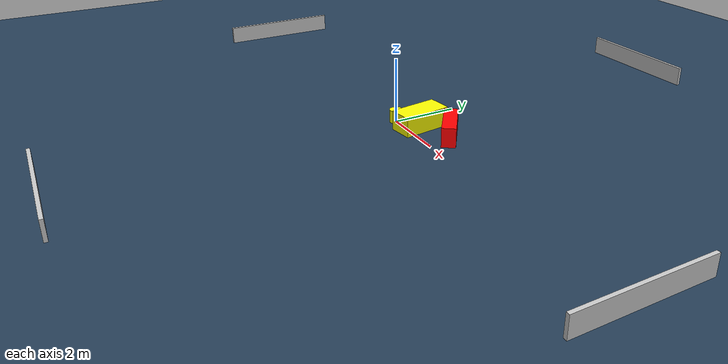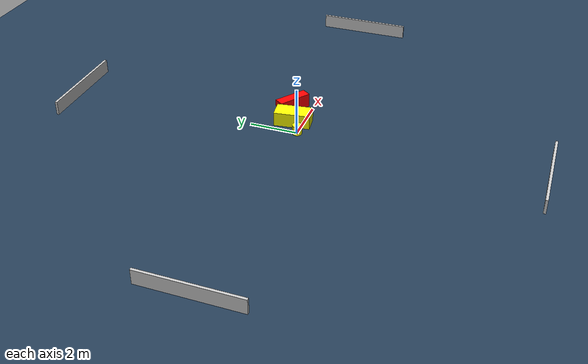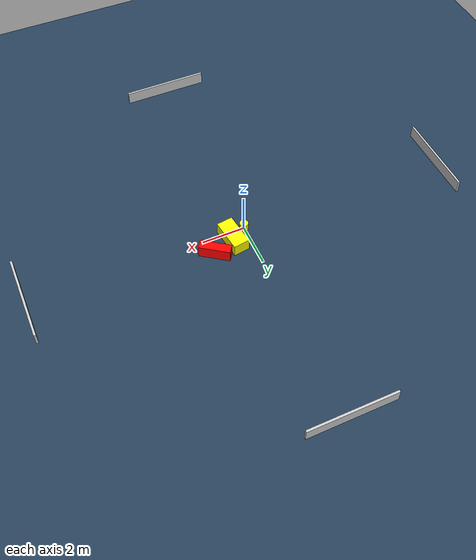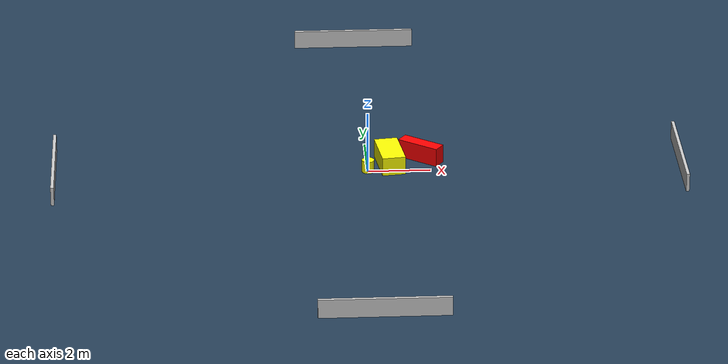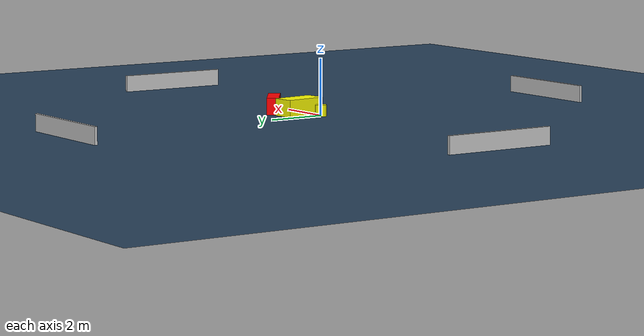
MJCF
<?xml version="1.0" ?>
<mujoco model="generated_environment">
  <option timestep="0.01" integrator="RK4" cone="elliptic"/>
  <default>
    <geom density="1"/>
  </default>
  <asset>
    <texture builtin="gradient" height="3072" name="skybox" rgb1="0.3 0.5 0.7" rgb2="0 0 0" type="skybox" width="512"/>
    <texture builtin="checker" height="300" name="groundplane" rgb1="0.2 0.3 0.4" rgb2="0.1 0.2 0.3" type="2d" width="300"/>
    <material name="groundplane" reflectance="0.2" texrepeat="5 5" texture="groundplane"/>
  </asset>
  <worldbody>
    <light dir="0 0 -1" directional="true" pos="0 0 1.5"/>
    <geom condim="3" friction="0.5 0.005 0.001" material="groundplane" name="floor" pos="0 0 0" size="0 0 0.05" type="plane"/>
    <body name="walls">
      <geom name="wall_1" condim="4" pos="-10.0 0.0 0.3" rgba="0.800000011920929 0.800000011920929 0.800000011920929 1.0" size="0.05 2.0 0.3" type="box"/>
      <geom name="wall_2" condim="4" pos="10.0 0.0 0.3" rgba="0.800000011920929 0.800000011920929 0.800000011920929 1.0" size="0.05 2.0 0.3" type="box"/>
      <geom name="wall_3" condim="4" pos="0.0 -10.0 0.3" rgba="0.800000011920929 0.800000011920929 0.800000011920929 1.0" size="2.0 0.05 0.3" type="box"/>
      <geom name="wall_4" condim="4" pos="0.0 10.0 0.3" rgba="0.800000011920929 0.800000011920929 0.800000011920929 1.0" size="2.0 0.05 0.3" type="box"/>
    </body>
    <body name="robot">
      <joint name="joint_x" type="slide" pos="0 0 0" axis="1 0 0"/>
      <joint name="joint_y" type="slide" pos="0 0 0" axis="0 1 0"/>
      <geom name="robot" type="cylinder" pos="0.0 0.0 0.2" size="0.2 0.2 0.0" mass="5.0" friction="1.0 0.005 0.0001" condim="4" rgba="1.0 1.0 0.0 1.0"/>
    </body>
    <body name="obstacle_1_movable">
      <geom name="obstacle_1_movable" condim="4" pos="0.716255064109907 0.4201458037982431 0.3" euler="0 0 7.414997844293922" friction="0.0 0.005 0.001" rgba="1.0 1.0 0.0 1.0" size="0.3760900232296676 0.750328170049902 0.3" type="box" mass="0.1"/>
      <joint type="free"/>
    </body>
    <body name="obstacle_2_static">
      <geom name="obstacle_2_static" condim="4" pos="1.735372062018481 0.8189707311475333 0.3" euler="0 0 144.51671074266778" friction="0.0 0.005 0.001" rgba="1.0 0.0 0.0 1.0" size="0.7142766479453744 0.21137789922090633 0.3" type="box"/>
    </body>
  </worldbody>
  <actuator>
    <motor name="actuator_x" joint="joint_x" gear="1" ctrlrange="-1 1"/>
    <motor name="actuator_y" joint="joint_y" gear="1" ctrlrange="-1 1"/>
  </actuator>
</mujoco>
